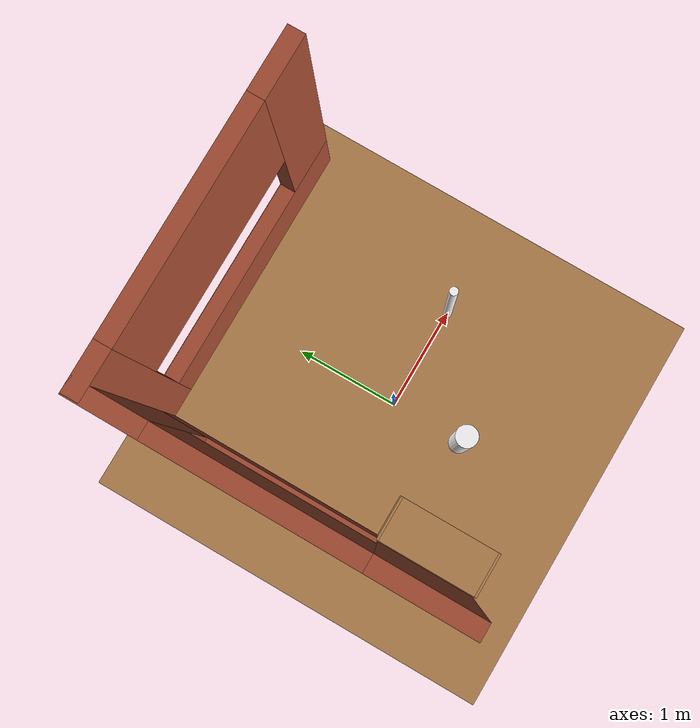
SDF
<sdf version="1.6">
 <world name="default">
  <gravity>0 0 -9.8</gravity>
  <magnetic_field>6e-06 2.3e-05 -4.2e-05</magnetic_field>
  <atmosphere type="adiabatic"/>
  <physics name="default_physics" default="0" type="ode">
   <max_contacts>5</max_contacts>
   <ode>
    <solver>
     <type>quick</type>
     <iters>50</iters>
     <precon_iters>0</precon_iters>
     <sor>1.3</sor>
     <use_dynamic_moi_rescaling>0</use_dynamic_moi_rescaling>
    </solver>
    <constraints>
     <cfm>0</cfm>
     <erp>0.2</erp>
     <contact_max_correcting_vel>100</contact_max_correcting_vel>
     <contact_surface_layer>0.001</contact_surface_layer>
    </constraints>
   </ode>
   <max_step_size>0.001</max_step_size>
   <real_time_factor>1</real_time_factor>
   <real_time_update_rate>1000</real_time_update_rate>
  </physics>
  <scene><ambient>0.4 0.4 0.4 1</ambient><background>0.7 0.7 1 1</background><shadows>1</shadows></scene>
  <spherical_coordinates>
   <surface_model>EARTH_WGS84</surface_model>
   <latitude_deg>0</latitude_deg>
   <longitude_deg>0</longitude_deg>
   <elevation>0</elevation>
   <heading_deg>0</heading_deg>
  </spherical_coordinates>
  <light name="user_spot_light_0" type="spot">
   <pose>-0.614545 -0.753038 2.0714 0.392405 -0 0</pose>
   <diffuse>0.7 0.5 0.2 1</diffuse>
   <specular>0.1 0.1 0.1 1</specular>
   <direction>0 0 -1</direction>
   <attenuation>
    <range>20</range>
    <constant>0.5</constant>
    <linear>0.01</linear>
    <quadratic>0.001</quadratic>
   </attenuation>
   <cast_shadows>0</cast_shadows>
   <spot><inner_angle>0.6</inner_angle><outer_angle>1</outer_angle><falloff>1</falloff></spot>
  </light>
  <light name="user_directional_light_0" type="directional">
   <pose>0 0 3 0 -0 0</pose>
   <diffuse>0.9 0.85 0.8 1</diffuse>
   <specular>0.1 0.1 0.1 1</specular>
   <direction>0.1 0.1 -0.9</direction>
   <attenuation>
    <range>20</range>
    <constant>0.5</constant>
    <linear>0.01</linear>
    <quadratic>0.001</quadratic>
   </attenuation>
  </light>
  <model name="building">
   <pose>0.230982 0.234526 0 0 -0 0</pose>
   <link name="Wall_1">
    <pose>-1.42 -0 0 0 -0 1.5708</pose>
    <visual name="Wall_1_Visual_0">
     <pose>-1.1775 0 1.25 0 -0 0</pose>
     <geometry><box><size>0.895 0.15 2.5</size></box></geometry>
     <material>
      <script><uri>file://media/materials/scripts/gazebo.material</uri><name>Gazebo/Bricks</name></script>
      <ambient>1 1 1 1</ambient>
     </material>
     <meta><layer>0</layer></meta>
    </visual>
    <collision name="Wall_1_Collision_0">
     <geometry><box><size>0.895 0.15 2.5</size></box></geometry>
     <pose>-1.1775 0 1.25 0 -0 0</pose>
    </collision>
    <visual name="Wall_1_Visual_1">
     <pose>0.4475 0 0.25 0 -0 0</pose>
     <geometry><box><size>2.355 0.15 0.5</size></box></geometry>
     <material>
      <script><uri>file://media/materials/scripts/gazebo.material</uri><name>Gazebo/Bricks</name></script>
      <ambient>1 1 1 1</ambient>
     </material>
     <meta><layer>0</layer></meta>
    </visual>
    <collision name="Wall_1_Collision_1">
     <geometry><box><size>2.355 0.15 0.5</size></box></geometry>
     <pose>0.4475 0 0.25 0 -0 0</pose>
    </collision>
    <visual name="Wall_1_Visual_2">
     <pose>1.3175 0 1.5 0 -0 0</pose>
     <geometry><box><size>0.615 0.15 2</size></box></geometry>
     <material>
      <script><uri>file://media/materials/scripts/gazebo.material</uri><name>Gazebo/Bricks</name></script>
      <ambient>1 1 1 1</ambient>
     </material>
     <meta><layer>0</layer></meta>
    </visual>
    <collision name="Wall_1_Collision_2">
     <geometry><box><size>0.615 0.15 2</size></box></geometry>
     <pose>1.3175 0 1.5 0 -0 0</pose>
    </collision>
    <visual name="Wall_1_Visual_3">
     <pose>0.14 0 1.9 0 -0 0</pose>
     <geometry><box><size>1.74 0.15 1.2</size></box></geometry>
     <material>
      <script><uri>file://media/materials/scripts/gazebo.material</uri><name>Gazebo/Bricks</name></script>
      <ambient>1 1 1 1</ambient>
     </material>
     <meta><layer>0</layer></meta>
    </visual>
    <collision name="Wall_1_Collision_3">
     <geometry><box><size>1.74 0.15 1.2</size></box></geometry>
     <pose>0.14 0 1.9 0 -0 0</pose>
    </collision>
   </link>
   <link name="Wall_3">
    <pose>0.005 1.55 0 0 -0 0</pose>
    <visual name="Wall_3_Visual_0">
     <pose>-1.27727 0 1.25 0 -0 0</pose>
     <geometry><box><size>0.425456 0.15 2.5</size></box></geometry>
     <material>
      <script><uri>file://media/materials/scripts/gazebo.material</uri><name>Gazebo/Bricks</name></script>
      <ambient>1 1 1 1</ambient>
     </material>
     <meta><layer>0</layer></meta>
    </visual>
    <collision name="Wall_3_Collision_0">
     <geometry><box><size>0.425456 0.15 2.5</size></box></geometry>
     <pose>-1.27727 0 1.25 0 -0 0</pose>
    </collision>
    <visual name="Wall_3_Visual_1">
     <pose>0.212728 0 0.25 0 -0 0</pose>
     <geometry><box><size>2.55454 0.15 0.5</size></box></geometry>
     <material>
      <script><uri>file://media/materials/scripts/gazebo.material</uri><name>Gazebo/Bricks</name></script>
      <ambient>1 1 1 1</ambient>
     </material>
     <meta><layer>0</layer></meta>
    </visual>
    <collision name="Wall_3_Collision_1">
     <geometry><box><size>2.55454 0.15 0.5</size></box></geometry>
     <pose>0.212728 0 0.25 0 -0 0</pose>
    </collision>
    <visual name="Wall_3_Visual_2">
     <pose>1.21273 0 1.5 0 -0 0</pose>
     <geometry><box><size>0.554544 0.15 2</size></box></geometry>
     <material>
      <script><uri>file://media/materials/scripts/gazebo.material</uri><name>Gazebo/Bricks</name></script>
      <ambient>1 1 1 1</ambient>
     </material>
     <meta><layer>0</layer></meta>
    </visual>
    <collision name="Wall_3_Collision_2">
     <geometry><box><size>0.554544 0.15 2</size></box></geometry>
     <pose>1.21273 0 1.5 0 -0 0</pose>
    </collision>
    <visual name="Wall_3_Visual_3">
     <pose>-0.064544 0 1.9 0 -0 0</pose>
     <geometry><box><size>2 0.15 1.2</size></box></geometry>
     <material>
      <script><uri>file://media/materials/scripts/gazebo.material</uri><name>Gazebo/Bricks</name></script>
      <ambient>1 1 1 1</ambient>
     </material>
     <meta><layer>0</layer></meta>
    </visual>
    <collision name="Wall_3_Collision_3">
     <geometry><box><size>2 0.15 1.2</size></box></geometry>
     <pose>-0.064544 0 1.9 0 -0 0</pose>
    </collision>
   </link>
   <static>1</static>
  </model>
  <model name="floor">
   <static>1</static>
   <pose>0 0 -0.025 0 -0 0</pose>
   <link name="link">
    <inertial>
     <mass>1</mass>
     <inertia>
      <ixx>0.166667</ixx>
      <ixy>0</ixy>
      <ixz>0</ixz>
      <iyy>0.166667</iyy>
      <iyz>0</iyz>
      <izz>0.166667</izz>
     </inertia>
    </inertial>
    <collision name="collision"><geometry><box><size>4 4 0.05</size></box></geometry></collision>
    <visual name="visual">
     <geometry><box><size>4 4 0.05</size></box></geometry>
     <material>
      <script><uri>file://media/materials/scripts/gazebo.material</uri><name>Gazebo/Wood</name></script>
      <ambient>1 1 1 1</ambient>
     </material>
    </visual>
   </link>
  </model>
  <model name="kinect_pilar">
   <static>1</static>
   <pose>1 0 0.5 0 -0 0</pose>
   <link name="link">
    <inertial>
     <mass>1</mass>
     <inertia><ixx>0.145833</ixx><ixy>0</ixy><ixz>0</ixz><iyy>0.145833</iyy><iyz>0</iyz><izz>0.125</izz></inertia>
    </inertial>
    <collision name="collision">
     <geometry><cylinder><radius>0.04</radius><length>1</length></cylinder></geometry>
    </collision>
    <visual name="visual">
     <geometry><cylinder><radius>0.04</radius><length>1</length></cylinder></geometry>
     <material>
      <script><uri>file://media/materials/scripts/gazebo.material</uri><name>Gazebo/Metal</name></script>
      <ambient>1 1 1 1</ambient>
     </material>
    </visual>
   </link>
  </model>
  <model name="robot_pilar">
   <static>1</static>
   <pose>0 -0.7 0.5 0 -0 0</pose>
   <link name="link">
    <inertial>
     <mass>1</mass>
     <inertia><ixx>0.145833</ixx><ixy>0</ixy><ixz>0</ixz><iyy>0.145833</iyy><iyz>0</iyz><izz>0.125</izz></inertia>
    </inertial>
    <collision name="collision">
     <geometry><cylinder><radius>0.1</radius><length>1</length></cylinder></geometry>
    </collision>
    <visual name="visual">
     <geometry><cylinder><radius>0.1</radius><length>1</length></cylinder></geometry>
     <material>
      <script><uri>file://media/materials/scripts/gazebo.material</uri><name>Gazebo/Metal</name></script>
      <ambient>1 1 1 1</ambient>
     </material>
    </visual>
   </link>
  </model>
  <model name="bin"/>
  <model name="bookshelf">
   <static>1</static>
   <link name="link">
    <inertial><mass>1</mass></inertial>
    <collision name="back">
     <pose>0 0.005 0.6 0 -0 0</pose>
     <geometry><box><size>0.9 0.01 1.2</size></box></geometry>
    </collision>
    <visual name="visual1">
     <pose>0 0.005 0.6 0 -0 0</pose>
     <geometry><box><size>0.9 0.01 1.2</size></box></geometry>
     <material>
      <script><uri>file://media/materials/scripts/gazebo.material</uri><name>Gazebo/Wood</name></script>
     </material>
    </visual>
    <collision name="left_side">
     <pose>0.45 -0.195 0.6 0 -0 0</pose>
     <geometry><box><size>0.02 0.4 1.2</size></box></geometry>
    </collision>
    <visual name="visual2">
     <pose>0.45 -0.195 0.6 0 -0 0</pose>
     <geometry><box><size>0.02 0.4 1.2</size></box></geometry>
     <material>
      <script><uri>file://media/materials/scripts/gazebo.material</uri><name>Gazebo/Wood</name></script>
     </material>
    </visual>
    <collision name="right_side">
     <pose>-0.45 -0.195 0.6 0 -0 0</pose>
     <geometry><box><size>0.02 0.4 1.2</size></box></geometry>
    </collision>
    <visual name="visual3">
     <pose>-0.45 -0.195 0.6 0 -0 0</pose>
     <geometry><box><size>0.02 0.4 1.2</size></box></geometry>
     <material>
      <script><uri>file://media/materials/scripts/gazebo.material</uri><name>Gazebo/Wood</name></script>
     </material>
    </visual>
    <collision name="bottom">
     <pose>0 -0.195 0.03 0 -0 0</pose>
     <geometry><box><size>0.88 0.4 0.06</size></box></geometry>
    </collision>
    <visual name="visual4">
     <pose>0 -0.195 0.03 0 -0 0</pose>
     <geometry><box><size>0.88 0.4 0.06</size></box></geometry>
     <material>
      <script><uri>file://media/materials/scripts/gazebo.material</uri><name>Gazebo/Wood</name></script>
     </material>
    </visual>
    <collision name="top">
     <pose>0 -0.195 1.19 0 -0 0</pose>
     <geometry><box><size>0.88 0.4 0.02</size></box></geometry>
    </collision>
    <visual name="visual5">
     <pose>0 -0.195 1.19 0 -0 0</pose>
     <geometry><box><size>0.88 0.4 0.02</size></box></geometry>
     <material>
      <script><uri>file://media/materials/scripts/gazebo.material</uri><name>Gazebo/Wood</name></script>
     </material>
    </visual>
    <collision name="low_shelf">
     <pose>0 -0.195 0.43 0 -0 0</pose>
     <geometry><box><size>0.88 0.4 0.02</size></box></geometry>
    </collision>
    <visual name="visual6">
     <pose>0 -0.195 0.43 0 -0 0</pose>
     <geometry><box><size>0.88 0.4 0.02</size></box></geometry>
     <material>
      <script><uri>file://media/materials/scripts/gazebo.material</uri><name>Gazebo/Wood</name></script>
     </material>
    </visual>
    <collision name="high_shelf">
     <pose>0 -0.195 0.8 0 -0 0</pose>
     <geometry><box><size>0.88 0.4 0.02</size></box></geometry>
    </collision>
    <visual name="visual7">
     <pose>0 -0.195 0.8 0 -0 0</pose>
     <geometry><box><size>0.88 0.4 0.02</size></box></geometry>
     <material>
      <script><uri>file://media/materials/scripts/gazebo.material</uri><name>Gazebo/Wood</name></script>
     </material>
    </visual>
   </link>
   <pose>-1.09004 -0.93556 0 0 -0 1.57281</pose>
  </model>
 </world>
</sdf>
